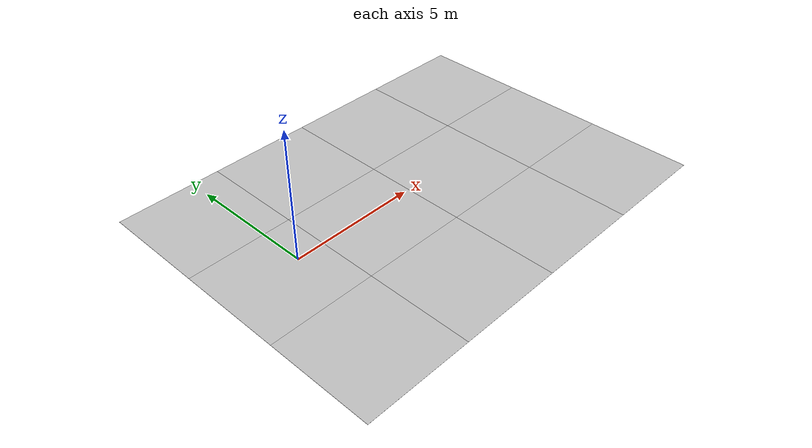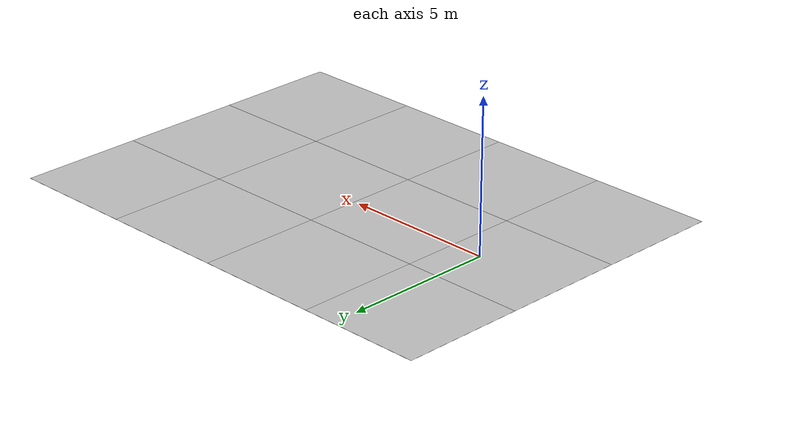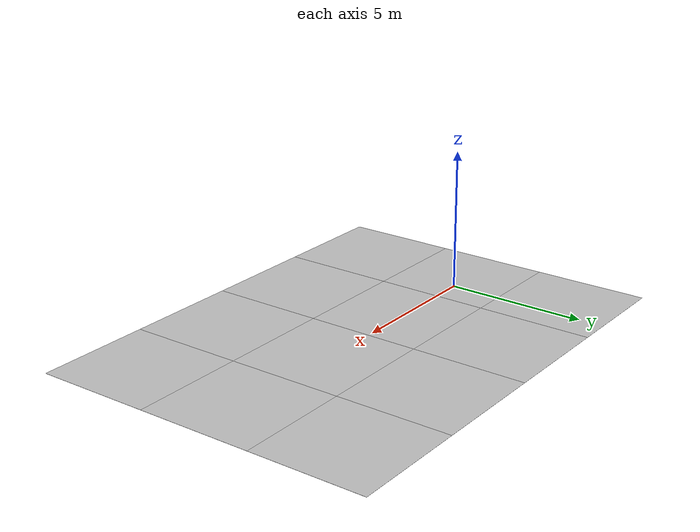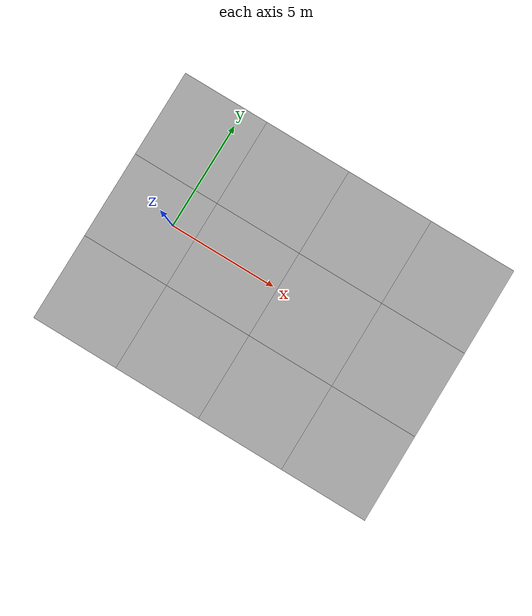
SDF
<sdf version="1.6">
 <world name="default">
  <light name="sun_light" type="directional">
   <pose>0 0 10 0 -0 0</pose>
   <diffuse>0.5 0.5 0.5 1</diffuse>
   <specular>0.1 0.1 0.1 1</specular>
   <direction>0.1 0.1 -0.9</direction>
   <attenuation>
    <range>20</range>
    <constant>0.5</constant>
    <linear>0.01</linear>
    <quadratic>0.001</quadratic>
   </attenuation>
  </light>
  <model name="Tile/0-0">
   <static>1</static>
   <link name="link">
    <collision name="collision">
     <geometry><plane><normal>0 0 1</normal><size>4.096 4.096</size></plane></geometry>
     <surface><friction><ode><mu>100</mu><mu2>50</mu2></ode></friction></surface>
    </collision>
    <visual name="visual">
     <cast_shadows>0</cast_shadows>
     <geometry><plane><normal>0 0 1</normal><size>4.096 4.096</size></plane></geometry>
     <material>
      <script>
       <uri>file://materials/scripts</uri>
       <uri>file://materials/textures</uri>
       <name>Tile/5eab350b8220ac9944dbdfa4ac3288c7c17e24c3bf5df0dfcf6173d64dae00a1</name>
      </script>
     </material>
    </visual>
   </link>
   <pose>-0.952 -4.3519999999999985 0 0 -0 0</pose>
  </model>
  <model name="Tile/0-1">
   <static>1</static>
   <link name="link">
    <collision name="collision">
     <geometry><plane><normal>0 0 1</normal><size>4.096 4.096</size></plane></geometry>
     <surface><friction><ode><mu>100</mu><mu2>50</mu2></ode></friction></surface>
    </collision>
    <visual name="visual">
     <cast_shadows>0</cast_shadows>
     <geometry><plane><normal>0 0 1</normal><size>4.096 4.096</size></plane></geometry>
     <material>
      <script>
       <uri>file://materials/scripts</uri>
       <uri>file://materials/textures</uri>
       <name>Tile/5464dcb0f52720152598694a64ea536d87527121c4a76b34749efdccdbd990fb</name>
      </script>
     </material>
    </visual>
   </link>
   <pose>-0.952 -0.25599999999999845 0 0 -0 0</pose>
  </model>
  <model name="Tile/0-2">
   <static>1</static>
   <link name="link">
    <collision name="collision">
     <geometry><plane><normal>0 0 1</normal><size>4.096 4.096</size></plane></geometry>
     <surface><friction><ode><mu>100</mu><mu2>50</mu2></ode></friction></surface>
    </collision>
    <visual name="visual">
     <cast_shadows>0</cast_shadows>
     <geometry><plane><normal>0 0 1</normal><size>4.096 4.096</size></plane></geometry>
     <material>
      <script>
       <uri>file://materials/scripts</uri>
       <uri>file://materials/textures</uri>
       <name>Tile/5eab350b8220ac9944dbdfa4ac3288c7c17e24c3bf5df0dfcf6173d64dae00a1</name>
      </script>
     </material>
    </visual>
   </link>
   <pose>-0.952 3.8400000000000016 0 0 -0 0</pose>
  </model>
  <model name="Tile/1-0">
   <static>1</static>
   <link name="link">
    <collision name="collision">
     <geometry><plane><normal>0 0 1</normal><size>4.096 4.096</size></plane></geometry>
     <surface><friction><ode><mu>100</mu><mu2>50</mu2></ode></friction></surface>
    </collision>
    <visual name="visual">
     <cast_shadows>0</cast_shadows>
     <geometry><plane><normal>0 0 1</normal><size>4.096 4.096</size></plane></geometry>
     <material>
      <script>
       <uri>file://materials/scripts</uri>
       <uri>file://materials/textures</uri>
       <name>Tile/f92684b559df33366a6a08ecb2eaa94db42180a0f69d5204b896c3c403a61072</name>
      </script>
     </material>
    </visual>
   </link>
   <pose>3.144 -4.3519999999999985 0 0 -0 0</pose>
  </model>
  <model name="Tile/1-1">
   <static>1</static>
   <link name="link">
    <collision name="collision">
     <geometry><plane><normal>0 0 1</normal><size>4.096 4.096</size></plane></geometry>
     <surface><friction><ode><mu>100</mu><mu2>50</mu2></ode></friction></surface>
    </collision>
    <visual name="visual">
     <cast_shadows>0</cast_shadows>
     <geometry><plane><normal>0 0 1</normal><size>4.096 4.096</size></plane></geometry>
     <material>
      <script>
       <uri>file://materials/scripts</uri>
       <uri>file://materials/textures</uri>
       <name>Tile/75f13c25b6de785d19dfb3476baeb7550a0d062c120e710c1f7bbe0488b269aa</name>
      </script>
     </material>
    </visual>
   </link>
   <pose>3.144 -0.25599999999999845 0 0 -0 0</pose>
  </model>
  <model name="Tile/1-2">
   <static>1</static>
   <link name="link">
    <collision name="collision">
     <geometry><plane><normal>0 0 1</normal><size>4.096 4.096</size></plane></geometry>
     <surface><friction><ode><mu>100</mu><mu2>50</mu2></ode></friction></surface>
    </collision>
    <visual name="visual">
     <cast_shadows>0</cast_shadows>
     <geometry><plane><normal>0 0 1</normal><size>4.096 4.096</size></plane></geometry>
     <material>
      <script>
       <uri>file://materials/scripts</uri>
       <uri>file://materials/textures</uri>
       <name>Tile/5eab350b8220ac9944dbdfa4ac3288c7c17e24c3bf5df0dfcf6173d64dae00a1</name>
      </script>
     </material>
    </visual>
   </link>
   <pose>3.144 3.8400000000000016 0 0 -0 0</pose>
  </model>
  <model name="Tile/2-0">
   <static>1</static>
   <link name="link">
    <collision name="collision">
     <geometry><plane><normal>0 0 1</normal><size>4.096 4.096</size></plane></geometry>
     <surface><friction><ode><mu>100</mu><mu2>50</mu2></ode></friction></surface>
    </collision>
    <visual name="visual">
     <cast_shadows>0</cast_shadows>
     <geometry><plane><normal>0 0 1</normal><size>4.096 4.096</size></plane></geometry>
     <material>
      <script>
       <uri>file://materials/scripts</uri>
       <uri>file://materials/textures</uri>
       <name>Tile/8153dcdb03186b36e7e26181a0a852195bc2ad3a83c48de22901fac9b255d118</name>
      </script>
     </material>
    </visual>
   </link>
   <pose>7.24 -4.3519999999999985 0 0 -0 0</pose>
  </model>
  <model name="Tile/2-1">
   <static>1</static>
   <link name="link">
    <collision name="collision">
     <geometry><plane><normal>0 0 1</normal><size>4.096 4.096</size></plane></geometry>
     <surface><friction><ode><mu>100</mu><mu2>50</mu2></ode></friction></surface>
    </collision>
    <visual name="visual">
     <cast_shadows>0</cast_shadows>
     <geometry><plane><normal>0 0 1</normal><size>4.096 4.096</size></plane></geometry>
     <material>
      <script>
       <uri>file://materials/scripts</uri>
       <uri>file://materials/textures</uri>
       <name>Tile/83af12805d0bfbdf2b14e5e7019508eeeefbd5b23d7e064d7e956b4fb87f54c2</name>
      </script>
     </material>
    </visual>
   </link>
   <pose>7.24 -0.25599999999999845 0 0 -0 0</pose>
  </model>
  <model name="Tile/2-2">
   <static>1</static>
   <link name="link">
    <collision name="collision">
     <geometry><plane><normal>0 0 1</normal><size>4.096 4.096</size></plane></geometry>
     <surface><friction><ode><mu>100</mu><mu2>50</mu2></ode></friction></surface>
    </collision>
    <visual name="visual">
     <cast_shadows>0</cast_shadows>
     <geometry><plane><normal>0 0 1</normal><size>4.096 4.096</size></plane></geometry>
     <material>
      <script>
       <uri>file://materials/scripts</uri>
       <uri>file://materials/textures</uri>
       <name>Tile/5eab350b8220ac9944dbdfa4ac3288c7c17e24c3bf5df0dfcf6173d64dae00a1</name>
      </script>
     </material>
    </visual>
   </link>
   <pose>7.24 3.8400000000000016 0 0 -0 0</pose>
  </model>
  <model name="Tile/3-0">
   <static>1</static>
   <link name="link">
    <collision name="collision">
     <geometry><plane><normal>0 0 1</normal><size>4.096 4.096</size></plane></geometry>
     <surface><friction><ode><mu>100</mu><mu2>50</mu2></ode></friction></surface>
    </collision>
    <visual name="visual">
     <cast_shadows>0</cast_shadows>
     <geometry><plane><normal>0 0 1</normal><size>4.096 4.096</size></plane></geometry>
     <material>
      <script>
       <uri>file://materials/scripts</uri>
       <uri>file://materials/textures</uri>
       <name>Tile/5eab350b8220ac9944dbdfa4ac3288c7c17e24c3bf5df0dfcf6173d64dae00a1</name>
      </script>
     </material>
    </visual>
   </link>
   <pose>11.336 -4.3519999999999985 0 0 -0 0</pose>
  </model>
  <model name="Tile/3-1">
   <static>1</static>
   <link name="link">
    <collision name="collision">
     <geometry><plane><normal>0 0 1</normal><size>4.096 4.096</size></plane></geometry>
     <surface><friction><ode><mu>100</mu><mu2>50</mu2></ode></friction></surface>
    </collision>
    <visual name="visual">
     <cast_shadows>0</cast_shadows>
     <geometry><plane><normal>0 0 1</normal><size>4.096 4.096</size></plane></geometry>
     <material>
      <script>
       <uri>file://materials/scripts</uri>
       <uri>file://materials/textures</uri>
       <name>Tile/b56b2c030fcb9c19ce47bb6073598a627b5e440d93561695fe7d50ca125cf1e9</name>
      </script>
     </material>
    </visual>
   </link>
   <pose>11.336 -0.25599999999999845 0 0 -0 0</pose>
  </model>
  <model name="Tile/3-2">
   <static>1</static>
   <link name="link">
    <collision name="collision">
     <geometry><plane><normal>0 0 1</normal><size>4.096 4.096</size></plane></geometry>
     <surface><friction><ode><mu>100</mu><mu2>50</mu2></ode></friction></surface>
    </collision>
    <visual name="visual">
     <cast_shadows>0</cast_shadows>
     <geometry><plane><normal>0 0 1</normal><size>4.096 4.096</size></plane></geometry>
     <material>
      <script>
       <uri>file://materials/scripts</uri>
       <uri>file://materials/textures</uri>
       <name>Tile/5eab350b8220ac9944dbdfa4ac3288c7c17e24c3bf5df0dfcf6173d64dae00a1</name>
      </script>
     </material>
    </visual>
   </link>
   <pose>11.336 3.8400000000000016 0 0 -0 0</pose>
  </model>
 </world>
</sdf>
